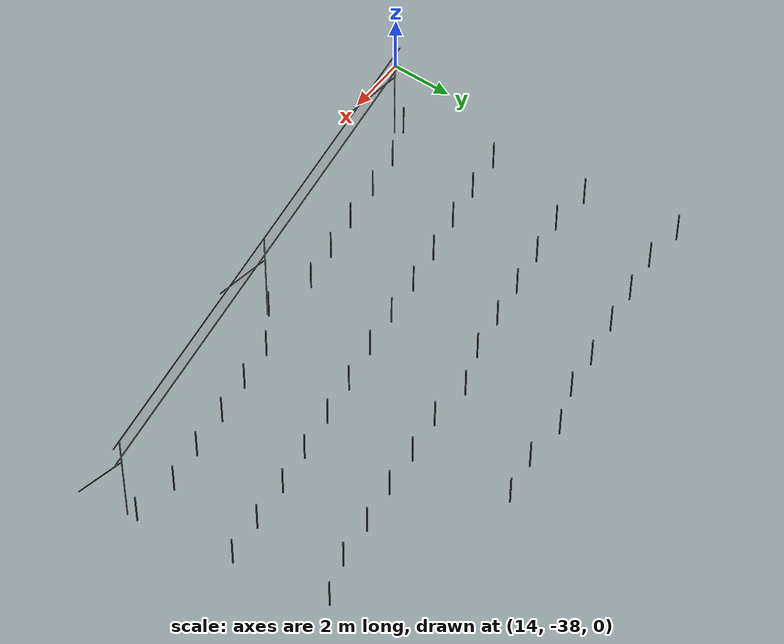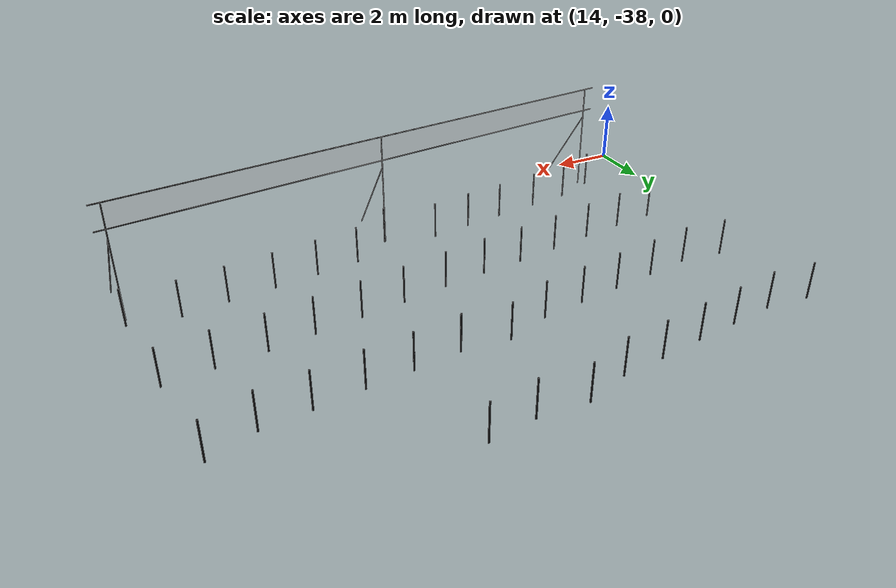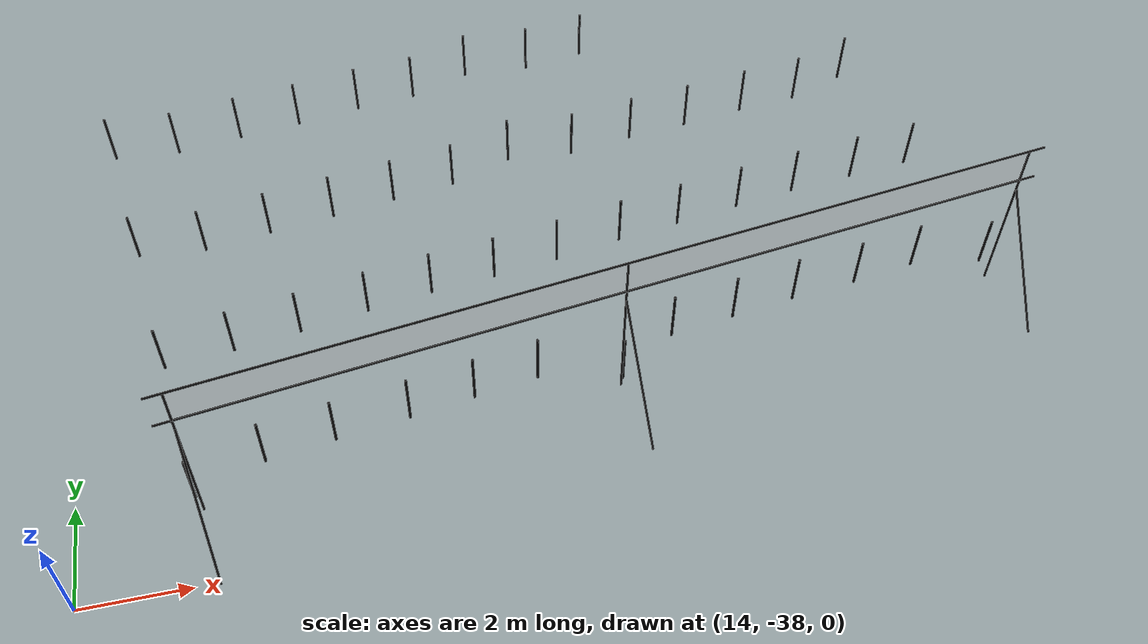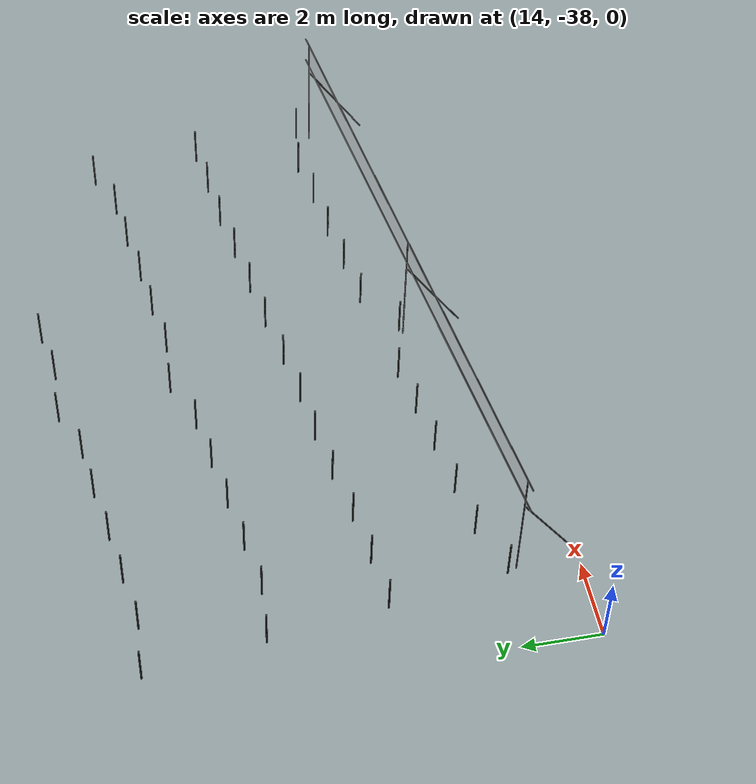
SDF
<sdf version="1.7">
 <world name="default">
  <model name="pole_5">
   <link name="link">
    <collision name="collision">
     <geometry><cylinder><length>1.15</length><radius>0.025</radius></cylinder></geometry>
    </collision>
    <visual name="visual">
     <geometry><cylinder><length>1.15</length><radius>0.025</radius></cylinder></geometry>
     <material>
      <script><uri>file://media/materials/scripts/gazebo.material</uri><name>Gazebo/Chrome</name></script>
      <emissive>0.1 0.1 0.1 1</emissive>
      <shader type="vertex"><normal_map>__default__</normal_map></shader>
      <specular>0.01 0.01 0.01 1</specular>
      <ambient>0.5 0.5 0.5 1</ambient>
      <diffuse>0.05 0.05 0.05 1</diffuse>
     </material>
    </visual>
   </link>
   <static>1</static>
   <pose>22.65 -26.08 0.575 0.0 0.0 0.0</pose>
  </model>
  <model name="pole_6">
   <link name="link">
    <collision name="collision">
     <geometry><cylinder><length>1.15</length><radius>0.025</radius></cylinder></geometry>
    </collision>
    <visual name="visual">
     <geometry><cylinder><length>1.15</length><radius>0.025</radius></cylinder></geometry>
     <material>
      <script><uri>file://media/materials/scripts/gazebo.material</uri><name>Gazebo/Chrome</name></script>
      <emissive>0.1 0.1 0.1 1</emissive>
      <shader type="vertex"><normal_map>__default__</normal_map></shader>
      <specular>0.01 0.01 0.01 1</specular>
      <ambient>0.5 0.5 0.5 1</ambient>
      <diffuse>0.05 0.05 0.05 1</diffuse>
     </material>
    </visual>
   </link>
   <static>1</static>
   <pose>23.1 -29.01 0.575 0.0 0.0 0.0</pose>
  </model>
  <model name="pole_7">
   <link name="link">
    <collision name="collision">
     <geometry><cylinder><length>1.15</length><radius>0.025</radius></cylinder></geometry>
    </collision>
    <visual name="visual">
     <geometry><cylinder><length>1.15</length><radius>0.025</radius></cylinder></geometry>
     <material>
      <script><uri>file://media/materials/scripts/gazebo.material</uri><name>Gazebo/Chrome</name></script>
      <emissive>0.1 0.1 0.1 1</emissive>
      <shader type="vertex"><normal_map>__default__</normal_map></shader>
      <specular>0.01 0.01 0.01 1</specular>
      <ambient>0.5 0.5 0.5 1</ambient>
      <diffuse>0.05 0.05 0.05 1</diffuse>
     </material>
    </visual>
   </link>
   <static>1</static>
   <pose>23.53 -32.05 0.575 0.0 0.0 0.0</pose>
  </model>
  <model name="pole_8">
   <link name="link">
    <collision name="collision">
     <geometry><cylinder><length>1.15</length><radius>0.025</radius></cylinder></geometry>
    </collision>
    <visual name="visual">
     <geometry><cylinder><length>1.15</length><radius>0.025</radius></cylinder></geometry>
     <material>
      <script><uri>file://media/materials/scripts/gazebo.material</uri><name>Gazebo/Chrome</name></script>
      <emissive>0.1 0.1 0.1 1</emissive>
      <shader type="vertex"><normal_map>__default__</normal_map></shader>
      <specular>0.01 0.01 0.01 1</specular>
      <ambient>0.5 0.5 0.5 1</ambient>
      <diffuse>0.05 0.05 0.05 1</diffuse>
     </material>
    </visual>
   </link>
   <static>1</static>
   <pose>24.12 -35.26 0.575 0.0 0.0 0.0</pose>
  </model>
  <model name="pole_104">
   <link name="link">
    <collision name="collision">
     <geometry><cylinder><length>1.15</length><radius>0.025</radius></cylinder></geometry>
    </collision>
    <visual name="visual">
     <geometry><cylinder><length>1.15</length><radius>0.025</radius></cylinder></geometry>
     <material>
      <script><uri>file://media/materials/scripts/gazebo.material</uri><name>Gazebo/Chrome</name></script>
      <emissive>0.1 0.1 0.1 1</emissive>
      <shader type="vertex"><normal_map>__default__</normal_map></shader>
      <specular>0.01 0.01 0.01 1</specular>
      <ambient>0.5 0.5 0.5 1</ambient>
      <diffuse>0.05 0.05 0.05 1</diffuse>
     </material>
    </visual>
   </link>
   <static>1</static>
   <pose>25.39 -25.9 0.575 0.0 0.0 0.0</pose>
  </model>
  <model name="pole_105">
   <link name="link">
    <collision name="collision">
     <geometry><cylinder><length>1.15</length><radius>0.025</radius></cylinder></geometry>
    </collision>
    <visual name="visual">
     <geometry><cylinder><length>1.15</length><radius>0.025</radius></cylinder></geometry>
     <material>
      <script><uri>file://media/materials/scripts/gazebo.material</uri><name>Gazebo/Chrome</name></script>
      <emissive>0.1 0.1 0.1 1</emissive>
      <shader type="vertex"><normal_map>__default__</normal_map></shader>
      <specular>0.01 0.01 0.01 1</specular>
      <ambient>0.5 0.5 0.5 1</ambient>
      <diffuse>0.05 0.05 0.05 1</diffuse>
     </material>
    </visual>
   </link>
   <static>1</static>
   <pose>25.85 -28.9 0.575 0.0 0.0 0.0</pose>
  </model>
  <model name="pole_106">
   <link name="link">
    <collision name="collision">
     <geometry><cylinder><length>1.15</length><radius>0.025</radius></cylinder></geometry>
    </collision>
    <visual name="visual">
     <geometry><cylinder><length>1.15</length><radius>0.025</radius></cylinder></geometry>
     <material>
      <script><uri>file://media/materials/scripts/gazebo.material</uri><name>Gazebo/Chrome</name></script>
      <emissive>0.1 0.1 0.1 1</emissive>
      <shader type="vertex"><normal_map>__default__</normal_map></shader>
      <specular>0.01 0.01 0.01 1</specular>
      <ambient>0.5 0.5 0.5 1</ambient>
      <diffuse>0.05 0.05 0.05 1</diffuse>
     </material>
    </visual>
   </link>
   <static>1</static>
   <pose>26.2 -31.6 0.575 0.0 0.0 0.0</pose>
  </model>
  <model name="pole_107">
   <link name="link">
    <collision name="collision">
     <geometry><cylinder><length>1.15</length><radius>0.025</radius></cylinder></geometry>
    </collision>
    <visual name="visual">
     <geometry><cylinder><length>1.15</length><radius>0.025</radius></cylinder></geometry>
     <material>
      <script><uri>file://media/materials/scripts/gazebo.material</uri><name>Gazebo/Chrome</name></script>
      <emissive>0.1 0.1 0.1 1</emissive>
      <shader type="vertex"><normal_map>__default__</normal_map></shader>
      <specular>0.01 0.01 0.01 1</specular>
      <ambient>0.5 0.5 0.5 1</ambient>
      <diffuse>0.05 0.05 0.05 1</diffuse>
     </material>
    </visual>
   </link>
   <static>1</static>
   <pose>26.6 -34.25 0.575 0.0 0.0 0.0</pose>
  </model>
  <model name="pole_113">
   <link name="link">
    <collision name="collision">
     <geometry><cylinder><length>1.15</length><radius>0.025</radius></cylinder></geometry>
    </collision>
    <visual name="visual">
     <geometry><cylinder><length>1.15</length><radius>0.025</radius></cylinder></geometry>
     <material>
      <script><uri>file://media/materials/scripts/gazebo.material</uri><name>Gazebo/Chrome</name></script>
      <emissive>0.1 0.1 0.1 1</emissive>
      <shader type="vertex"><normal_map>__default__</normal_map></shader>
      <specular>0.01 0.01 0.01 1</specular>
      <ambient>0.5 0.5 0.5 1</ambient>
      <diffuse>0.05 0.05 0.05 1</diffuse>
     </material>
    </visual>
   </link>
   <static>1</static>
   <pose>24.07 -26.13 0.575 0.0 0.0 0.0</pose>
  </model>
  <model name="pole_114">
   <link name="link">
    <collision name="collision">
     <geometry><cylinder><length>1.15</length><radius>0.025</radius></cylinder></geometry>
    </collision>
    <visual name="visual">
     <geometry><cylinder><length>1.15</length><radius>0.025</radius></cylinder></geometry>
     <material>
      <script><uri>file://media/materials/scripts/gazebo.material</uri><name>Gazebo/Chrome</name></script>
      <emissive>0.1 0.1 0.1 1</emissive>
      <shader type="vertex"><normal_map>__default__</normal_map></shader>
      <specular>0.01 0.01 0.01 1</specular>
      <ambient>0.5 0.5 0.5 1</ambient>
      <diffuse>0.05 0.05 0.05 1</diffuse>
     </material>
    </visual>
   </link>
   <static>1</static>
   <pose>24.49 -29.1 0.575 0.0 0.0 0.0</pose>
  </model>
  <model name="pole_115">
   <link name="link">
    <collision name="collision">
     <geometry><cylinder><length>1.15</length><radius>0.025</radius></cylinder></geometry>
    </collision>
    <visual name="visual">
     <geometry><cylinder><length>1.15</length><radius>0.025</radius></cylinder></geometry>
     <material>
      <script><uri>file://media/materials/scripts/gazebo.material</uri><name>Gazebo/Chrome</name></script>
      <emissive>0.1 0.1 0.1 1</emissive>
      <shader type="vertex"><normal_map>__default__</normal_map></shader>
      <specular>0.01 0.01 0.01 1</specular>
      <ambient>0.5 0.5 0.5 1</ambient>
      <diffuse>0.05 0.05 0.05 1</diffuse>
     </material>
    </visual>
   </link>
   <static>1</static>
   <pose>24.9 -31.8 0.575 0.0 0.0 0.0</pose>
  </model>
  <model name="pole_116">
   <link name="link">
    <collision name="collision">
     <geometry><cylinder><length>1.15</length><radius>0.025</radius></cylinder></geometry>
    </collision>
    <visual name="visual">
     <geometry><cylinder><length>1.15</length><radius>0.025</radius></cylinder></geometry>
     <material>
      <script><uri>file://media/materials/scripts/gazebo.material</uri><name>Gazebo/Chrome</name></script>
      <emissive>0.1 0.1 0.1 1</emissive>
      <shader type="vertex"><normal_map>__default__</normal_map></shader>
      <specular>0.01 0.01 0.01 1</specular>
      <ambient>0.5 0.5 0.5 1</ambient>
      <diffuse>0.05 0.05 0.05 1</diffuse>
     </material>
    </visual>
   </link>
   <static>1</static>
   <pose>25.3 -34.45 0.575 0.0 0.0 0.0</pose>
  </model>
  <model name="pole_122">
   <link name="link">
    <collision name="collision">
     <geometry><cylinder><length>1.15</length><radius>0.025</radius></cylinder></geometry>
    </collision>
    <visual name="visual">
     <geometry><cylinder><length>1.15</length><radius>0.025</radius></cylinder></geometry>
     <material>
      <script><uri>file://media/materials/scripts/gazebo.material</uri><name>Gazebo/Chrome</name></script>
      <emissive>0.1 0.1 0.1 1</emissive>
      <shader type="vertex"><normal_map>__default__</normal_map></shader>
      <specular>0.01 0.01 0.01 1</specular>
      <ambient>0.5 0.5 0.5 1</ambient>
      <diffuse>0.05 0.05 0.05 1</diffuse>
     </material>
    </visual>
   </link>
   <static>1</static>
   <pose>22.65 -26.08 0.575 0.0 0.0 0.0</pose>
  </model>
  <model name="pole_123">
   <link name="link">
    <collision name="collision">
     <geometry><cylinder><length>1.15</length><radius>0.025</radius></cylinder></geometry>
    </collision>
    <visual name="visual">
     <geometry><cylinder><length>1.15</length><radius>0.025</radius></cylinder></geometry>
     <material>
      <script><uri>file://media/materials/scripts/gazebo.material</uri><name>Gazebo/Chrome</name></script>
      <emissive>0.1 0.1 0.1 1</emissive>
      <shader type="vertex"><normal_map>__default__</normal_map></shader>
      <specular>0.01 0.01 0.01 1</specular>
      <ambient>0.5 0.5 0.5 1</ambient>
      <diffuse>0.05 0.05 0.05 1</diffuse>
     </material>
    </visual>
   </link>
   <static>1</static>
   <pose>23.1 -29.01 0.575 0.0 0.0 0.0</pose>
  </model>
  <model name="pole_124">
   <link name="link">
    <collision name="collision">
     <geometry><cylinder><length>1.15</length><radius>0.025</radius></cylinder></geometry>
    </collision>
    <visual name="visual">
     <geometry><cylinder><length>1.15</length><radius>0.025</radius></cylinder></geometry>
     <material>
      <script><uri>file://media/materials/scripts/gazebo.material</uri><name>Gazebo/Chrome</name></script>
      <emissive>0.1 0.1 0.1 1</emissive>
      <shader type="vertex"><normal_map>__default__</normal_map></shader>
      <specular>0.01 0.01 0.01 1</specular>
      <ambient>0.5 0.5 0.5 1</ambient>
      <diffuse>0.05 0.05 0.05 1</diffuse>
     </material>
    </visual>
   </link>
   <static>1</static>
   <pose>23.53 -32.05 0.575 0.0 0.0 0.0</pose>
  </model>
  <model name="pole_125">
   <link name="link">
    <collision name="collision">
     <geometry><cylinder><length>1.15</length><radius>0.025</radius></cylinder></geometry>
    </collision>
    <visual name="visual">
     <geometry><cylinder><length>1.15</length><radius>0.025</radius></cylinder></geometry>
     <material>
      <script><uri>file://media/materials/scripts/gazebo.material</uri><name>Gazebo/Chrome</name></script>
      <emissive>0.1 0.1 0.1 1</emissive>
      <shader type="vertex"><normal_map>__default__</normal_map></shader>
      <specular>0.01 0.01 0.01 1</specular>
      <ambient>0.5 0.5 0.5 1</ambient>
      <diffuse>0.05 0.05 0.05 1</diffuse>
     </material>
    </visual>
   </link>
   <static>1</static>
   <pose>24.12 -35.26 0.575 0.0 0.0 0.0</pose>
  </model>
  <model name="frontage_clone">
   <link name="link_1">
    <pose>6.68 -7.94 1.7 0.0 0.0 0.0</pose>
    <collision name="collision">
     <geometry><cylinder><length>3.5</length><radius>0.02</radius></cylinder></geometry>
    </collision>
    <visual name="visual">
     <geometry><cylinder><length>3.5</length><radius>0.02</radius></cylinder></geometry>
     <material>
      <script><uri>file://media/materials/scripts/gazebo.material</uri><name>Gazebo/Chrome</name></script>
      <emissive>0.1 0.1 0.1 1</emissive>
      <shader type="vertex"><normal_map>__default__</normal_map></shader>
      <specular>0.01 0.01 0.01 1</specular>
      <ambient>0.5 0.5 0.5 1</ambient>
      <diffuse>0.05 0.05 0.05 1</diffuse>
     </material>
    </visual>
   </link>
   <link name="link_2">
    <pose>6.68 0 1.7 0.0 0.0 0.0</pose>
    <collision name="collision">
     <geometry><cylinder><length>3.5</length><radius>0.02</radius></cylinder></geometry>
    </collision>
    <visual name="visual">
     <geometry><cylinder><length>3.5</length><radius>0.02</radius></cylinder></geometry>
     <material>
      <script><uri>file://media/materials/scripts/gazebo.material</uri><name>Gazebo/Chrome</name></script>
      <emissive>0.1 0.1 0.1 1</emissive>
      <shader type="vertex"><normal_map>__default__</normal_map></shader>
      <specular>0.01 0.01 0.01 1</specular>
      <ambient>0.5 0.5 0.5 1</ambient>
      <diffuse>0.05 0.05 0.05 1</diffuse>
     </material>
    </visual>
   </link>
   <link name="link_3">
    <pose>6.68 7.93 1.7 0.0 0.0 0.0</pose>
    <collision name="collision">
     <geometry><cylinder><length>3.5</length><radius>0.02</radius></cylinder></geometry>
    </collision>
    <visual name="visual">
     <geometry><cylinder><length>3.5</length><radius>0.02</radius></cylinder></geometry>
     <material>
      <script><uri>file://media/materials/scripts/gazebo.material</uri><name>Gazebo/Chrome</name></script>
      <emissive>0.1 0.1 0.1 1</emissive>
      <shader type="vertex"><normal_map>__default__</normal_map></shader>
      <specular>0.01 0.01 0.01 1</specular>
      <ambient>0.5 0.5 0.5 1</ambient>
      <diffuse>0.05 0.05 0.05 1</diffuse>
     </material>
    </visual>
   </link>
   <link name="link_4">
    <pose>6.68 0 2.7 1.5707 -0 0</pose>
    <collision name="collision">
     <geometry><cylinder><length>16.5</length><radius>0.02</radius></cylinder></geometry>
    </collision>
    <visual name="visual">
     <geometry><cylinder><length>16.5</length><radius>0.02</radius></cylinder></geometry>
     <material>
      <script><uri>file://media/materials/scripts/gazebo.material</uri><name>Gazebo/Chrome</name></script>
      <emissive>0.1 0.1 0.1 1</emissive>
      <shader type="vertex"><normal_map>__default__</normal_map></shader>
      <specular>0.01 0.01 0.01 1</specular>
      <ambient>0.5 0.5 0.5 1</ambient>
      <diffuse>0.05 0.05 0.05 1</diffuse>
     </material>
    </visual>
   </link>
   <link name="link_5">
    <pose>6.68 0 3.45 1.5707 -0 0</pose>
    <collision name="collision">
     <geometry><cylinder><length>16.5</length><radius>0.02</radius></cylinder></geometry>
    </collision>
    <visual name="visual">
     <geometry><cylinder><length>16.5</length><radius>0.02</radius></cylinder></geometry>
     <material>
      <script><uri>file://media/materials/scripts/gazebo.material</uri><name>Gazebo/Chrome</name></script>
      <emissive>0.1 0.1 0.1 1</emissive>
      <shader type="vertex"><normal_map>__default__</normal_map></shader>
      <specular>0.01 0.01 0.01 1</specular>
      <ambient>0.5 0.5 0.5 1</ambient>
      <diffuse>0.05 0.05 0.05 1</diffuse>
     </material>
    </visual>
   </link>
   <link name="link_6">
    <pose>5.89 -7.94 1.225 0 0.565 0</pose>
    <collision name="collision">
     <geometry><cylinder><length>2.93</length><radius>0.02</radius></cylinder></geometry>
    </collision>
    <visual name="visual">
     <geometry><cylinder><length>2.93</length><radius>0.02</radius></cylinder></geometry>
     <material>
      <script><uri>file://media/materials/scripts/gazebo.material</uri><name>Gazebo/Chrome</name></script>
      <emissive>0.1 0.1 0.1 1</emissive>
      <shader type="vertex"><normal_map>__default__</normal_map></shader>
      <specular>0.01 0.01 0.01 1</specular>
      <ambient>0.5 0.5 0.5 1</ambient>
      <diffuse>0.05 0.05 0.05 1</diffuse>
     </material>
    </visual>
   </link>
   <link name="link_7">
    <pose>5.89 0 1.225 0 0.565 0</pose>
    <collision name="collision">
     <geometry><cylinder><length>2.93</length><radius>0.02</radius></cylinder></geometry>
    </collision>
    <visual name="visual">
     <geometry><cylinder><length>2.93</length><radius>0.02</radius></cylinder></geometry>
     <material>
      <script><uri>file://media/materials/scripts/gazebo.material</uri><name>Gazebo/Chrome</name></script>
      <emissive>0.1 0.1 0.1 1</emissive>
      <shader type="vertex"><normal_map>__default__</normal_map></shader>
      <specular>0.01 0.01 0.01 1</specular>
      <ambient>0.5 0.5 0.5 1</ambient>
      <diffuse>0.05 0.05 0.05 1</diffuse>
     </material>
    </visual>
   </link>
   <link name="link_8">
    <pose>5.89 7.93 1.225 0 0.565 0</pose>
    <collision name="collision">
     <geometry><cylinder><length>2.93</length><radius>0.02</radius></cylinder></geometry>
    </collision>
    <visual name="visual">
     <geometry><cylinder><length>2.93</length><radius>0.02</radius></cylinder></geometry>
     <material>
      <script><uri>file://media/materials/scripts/gazebo.material</uri><name>Gazebo/Chrome</name></script>
      <emissive>0.1 0.1 0.1 1</emissive>
      <shader type="vertex"><normal_map>__default__</normal_map></shader>
      <specular>0.01 0.01 0.01 1</specular>
      <ambient>0.5 0.5 0.5 1</ambient>
      <diffuse>0.05 0.05 0.05 1</diffuse>
     </material>
    </visual>
   </link>
   <link name="link_9">
    <pose>6.68 0 3.075 0.0 0.0 0.0</pose>
    <collision name="collision"><geometry><box><size>0.002 15.87 0.75</size></box></geometry></collision>
    <visual name="visual">
     <geometry><box><size>0.002 15.87 0.75</size></box></geometry>
     <material>
      <emissive>1 1 1 1</emissive>
      <shader type="vertex"><normal_map>__default__</normal_map></shader>
      <specular>1 1 1 1</specular>
      <lighting>1</lighting>
      <ambient>1 1 1 1</ambient>
      <diffuse>1 1 1 1</diffuse>
     </material>
     <transparency>0.65</transparency>
    </visual>
   </link>
   <static>1</static>
   <pose>24.9847 -41.9744 0 0 -0 1.70941</pose>
  </model>
  <model name="pole_14">
   <link name="link">
    <collision name="collision">
     <geometry><cylinder><length>1.15</length><radius>0.025</radius></cylinder></geometry>
    </collision>
    <visual name="visual">
     <geometry><cylinder><length>1.15</length><radius>0.025</radius></cylinder></geometry>
     <material>
      <script><uri>file://media/materials/scripts/gazebo.material</uri><name>Gazebo/Chrome</name></script>
      <emissive>0.1 0.1 0.1 1</emissive>
      <shader type="vertex"><normal_map>__default__</normal_map></shader>
      <specular>0.01 0.01 0.01 1</specular>
      <ambient>0.5 0.5 0.5 1</ambient>
      <diffuse>0.05 0.05 0.05 1</diffuse>
     </material>
    </visual>
   </link>
   <static>1</static>
   <pose>21.37 -26.55 0.575 0.0 0.0 0.0</pose>
  </model>
  <model name="pole_15">
   <link name="link">
    <collision name="collision">
     <geometry><cylinder><length>1.15</length><radius>0.025</radius></cylinder></geometry>
    </collision>
    <visual name="visual">
     <geometry><cylinder><length>1.15</length><radius>0.025</radius></cylinder></geometry>
     <material>
      <script><uri>file://media/materials/scripts/gazebo.material</uri><name>Gazebo/Chrome</name></script>
      <emissive>0.1 0.1 0.1 1</emissive>
      <shader type="vertex"><normal_map>__default__</normal_map></shader>
      <specular>0.01 0.01 0.01 1</specular>
      <ambient>0.5 0.5 0.5 1</ambient>
      <diffuse>0.05 0.05 0.05 1</diffuse>
     </material>
    </visual>
   </link>
   <static>1</static>
   <pose>21.8 -29.5 0.575 0.0 0.0 0.0</pose>
  </model>
  <model name="pole_16">
   <link name="link">
    <collision name="collision">
     <geometry><cylinder><length>1.15</length><radius>0.025</radius></cylinder></geometry>
    </collision>
    <visual name="visual">
     <geometry><cylinder><length>1.15</length><radius>0.025</radius></cylinder></geometry>
     <material>
      <script><uri>file://media/materials/scripts/gazebo.material</uri><name>Gazebo/Chrome</name></script>
      <emissive>0.1 0.1 0.1 1</emissive>
      <shader type="vertex"><normal_map>__default__</normal_map></shader>
      <specular>0.01 0.01 0.01 1</specular>
      <ambient>0.5 0.5 0.5 1</ambient>
      <diffuse>0.05 0.05 0.05 1</diffuse>
     </material>
    </visual>
   </link>
   <static>1</static>
   <pose>22.2 -32.25 0.575 0.0 0.0 0.0</pose>
  </model>
  <model name="pole_17">
   <link name="link">
    <collision name="collision">
     <geometry><cylinder><length>1.15</length><radius>0.025</radius></cylinder></geometry>
    </collision>
    <visual name="visual">
     <geometry><cylinder><length>1.15</length><radius>0.025</radius></cylinder></geometry>
     <material>
      <script><uri>file://media/materials/scripts/gazebo.material</uri><name>Gazebo/Chrome</name></script>
      <emissive>0.1 0.1 0.1 1</emissive>
      <shader type="vertex"><normal_map>__default__</normal_map></shader>
      <specular>0.01 0.01 0.01 1</specular>
      <ambient>0.5 0.5 0.5 1</ambient>
      <diffuse>0.05 0.05 0.05 1</diffuse>
     </material>
    </visual>
   </link>
   <static>1</static>
   <pose>22.55 -34.9 0.575 0.0 0.0 0.0</pose>
  </model>
  <model name="pole_23">
   <link name="link">
    <collision name="collision">
     <geometry><cylinder><length>1.15</length><radius>0.025</radius></cylinder></geometry>
    </collision>
    <visual name="visual">
     <geometry><cylinder><length>1.15</length><radius>0.025</radius></cylinder></geometry>
     <material>
      <script><uri>file://media/materials/scripts/gazebo.material</uri><name>Gazebo/Chrome</name></script>
      <emissive>0.1 0.1 0.1 1</emissive>
      <shader type="vertex"><normal_map>__default__</normal_map></shader>
      <specular>0.01 0.01 0.01 1</specular>
      <ambient>0.5 0.5 0.5 1</ambient>
      <diffuse>0.05 0.05 0.05 1</diffuse>
     </material>
    </visual>
   </link>
   <static>1</static>
   <pose>20.1 -26.7 0.575 0.0 0.0 0.0</pose>
  </model>
  <model name="pole_24">
   <link name="link">
    <collision name="collision">
     <geometry><cylinder><length>1.15</length><radius>0.025</radius></cylinder></geometry>
    </collision>
    <visual name="visual">
     <geometry><cylinder><length>1.15</length><radius>0.025</radius></cylinder></geometry>
     <material>
      <script><uri>file://media/materials/scripts/gazebo.material</uri><name>Gazebo/Chrome</name></script>
      <emissive>0.1 0.1 0.1 1</emissive>
      <shader type="vertex"><normal_map>__default__</normal_map></shader>
      <specular>0.01 0.01 0.01 1</specular>
      <ambient>0.5 0.5 0.5 1</ambient>
      <diffuse>0.05 0.05 0.05 1</diffuse>
     </material>
    </visual>
   </link>
   <static>1</static>
   <pose>20.5 -29.7 0.575 0.0 0.0 0.0</pose>
  </model>
  <model name="pole_25">
   <link name="link">
    <collision name="collision">
     <geometry><cylinder><length>1.15</length><radius>0.025</radius></cylinder></geometry>
    </collision>
    <visual name="visual">
     <geometry><cylinder><length>1.15</length><radius>0.025</radius></cylinder></geometry>
     <material>
      <script><uri>file://media/materials/scripts/gazebo.material</uri><name>Gazebo/Chrome</name></script>
      <emissive>0.1 0.1 0.1 1</emissive>
      <shader type="vertex"><normal_map>__default__</normal_map></shader>
      <specular>0.01 0.01 0.01 1</specular>
      <ambient>0.5 0.5 0.5 1</ambient>
      <diffuse>0.05 0.05 0.05 1</diffuse>
     </material>
    </visual>
   </link>
   <static>1</static>
   <pose>20.9 -32.4 0.575 0.0 0.0 0.0</pose>
  </model>
  <model name="pole_26">
   <link name="link">
    <collision name="collision">
     <geometry><cylinder><length>1.15</length><radius>0.025</radius></cylinder></geometry>
    </collision>
    <visual name="visual">
     <geometry><cylinder><length>1.15</length><radius>0.025</radius></cylinder></geometry>
     <material>
      <script><uri>file://media/materials/scripts/gazebo.material</uri><name>Gazebo/Chrome</name></script>
      <emissive>0.1 0.1 0.1 1</emissive>
      <shader type="vertex"><normal_map>__default__</normal_map></shader>
      <specular>0.01 0.01 0.01 1</specular>
      <ambient>0.5 0.5 0.5 1</ambient>
      <diffuse>0.05 0.05 0.05 1</diffuse>
     </material>
    </visual>
   </link>
   <static>1</static>
   <pose>21.3 -35.1 0.575 0.0 0.0 0.0</pose>
  </model>
  <model name="pole_32">
   <link name="link">
    <collision name="collision">
     <geometry><cylinder><length>1.15</length><radius>0.025</radius></cylinder></geometry>
    </collision>
    <visual name="visual">
     <geometry><cylinder><length>1.15</length><radius>0.025</radius></cylinder></geometry>
     <material>
      <script><uri>file://media/materials/scripts/gazebo.material</uri><name>Gazebo/Chrome</name></script>
      <emissive>0.1 0.1 0.1 1</emissive>
      <shader type="vertex"><normal_map>__default__</normal_map></shader>
      <specular>0.01 0.01 0.01 1</specular>
      <ambient>0.5 0.5 0.5 1</ambient>
      <diffuse>0.05 0.05 0.05 1</diffuse>
     </material>
    </visual>
   </link>
   <static>1</static>
   <pose>18.75 -26.92 0.575 0.0 0.0 0.0</pose>
  </model>
  <model name="pole_33">
   <link name="link">
    <collision name="collision">
     <geometry><cylinder><length>1.15</length><radius>0.025</radius></cylinder></geometry>
    </collision>
    <visual name="visual">
     <geometry><cylinder><length>1.15</length><radius>0.025</radius></cylinder></geometry>
     <material>
      <script><uri>file://media/materials/scripts/gazebo.material</uri><name>Gazebo/Chrome</name></script>
      <emissive>0.1 0.1 0.1 1</emissive>
      <shader type="vertex"><normal_map>__default__</normal_map></shader>
      <specular>0.01 0.01 0.01 1</specular>
      <ambient>0.5 0.5 0.5 1</ambient>
      <diffuse>0.05 0.05 0.05 1</diffuse>
     </material>
    </visual>
   </link>
   <static>1</static>
   <pose>19.2 -29.9 0.575 0.0 0.0 0.0</pose>
  </model>
  <model name="pole_34">
   <link name="link">
    <collision name="collision">
     <geometry><cylinder><length>1.15</length><radius>0.025</radius></cylinder></geometry>
    </collision>
    <visual name="visual">
     <geometry><cylinder><length>1.15</length><radius>0.025</radius></cylinder></geometry>
     <material>
      <script><uri>file://media/materials/scripts/gazebo.material</uri><name>Gazebo/Chrome</name></script>
      <emissive>0.1 0.1 0.1 1</emissive>
      <shader type="vertex"><normal_map>__default__</normal_map></shader>
      <specular>0.01 0.01 0.01 1</specular>
      <ambient>0.5 0.5 0.5 1</ambient>
      <diffuse>0.05 0.05 0.05 1</diffuse>
     </material>
    </visual>
   </link>
   <static>1</static>
   <pose>19.6 -32.6 0.575 0.0 0.0 0.0</pose>
  </model>
  <model name="pole_35">
   <link name="link">
    <collision name="collision">
     <geometry><cylinder><length>1.15</length><radius>0.025</radius></cylinder></geometry>
    </collision>
    <visual name="visual">
     <geometry><cylinder><length>1.15</length><radius>0.025</radius></cylinder></geometry>
     <material>
      <script><uri>file://media/materials/scripts/gazebo.material</uri><name>Gazebo/Chrome</name></script>
      <emissive>0.1 0.1 0.1 1</emissive>
      <shader type="vertex"><normal_map>__default__</normal_map></shader>
      <specular>0.01 0.01 0.01 1</specular>
      <ambient>0.5 0.5 0.5 1</ambient>
      <diffuse>0.05 0.05 0.05 1</diffuse>
     </material>
    </visual>
   </link>
   <static>1</static>
   <pose>20.05 -35.3 0.575 0.0 0.0 0.0</pose>
  </model>
  <model name="pole_41">
   <link name="link">
    <collision name="collision">
     <geometry><cylinder><length>1.15</length><radius>0.025</radius></cylinder></geometry>
    </collision>
    <visual name="visual">
     <geometry><cylinder><length>1.15</length><radius>0.025</radius></cylinder></geometry>
     <material>
      <script><uri>file://media/materials/scripts/gazebo.material</uri><name>Gazebo/Chrome</name></script>
      <emissive>0.1 0.1 0.1 1</emissive>
      <shader type="vertex"><normal_map>__default__</normal_map></shader>
      <specular>0.01 0.01 0.01 1</specular>
      <ambient>0.5 0.5 0.5 1</ambient>
      <diffuse>0.05 0.05 0.05 1</diffuse>
     </material>
    </visual>
   </link>
   <static>1</static>
   <pose>17.45 -27.1 0.575 0.0 0.0 0.0</pose>
  </model>
  <model name="pole_42">
   <link name="link">
    <collision name="collision">
     <geometry><cylinder><length>1.15</length><radius>0.025</radius></cylinder></geometry>
    </collision>
    <visual name="visual">
     <geometry><cylinder><length>1.15</length><radius>0.025</radius></cylinder></geometry>
     <material>
      <script><uri>file://media/materials/scripts/gazebo.material</uri><name>Gazebo/Chrome</name></script>
      <emissive>0.1 0.1 0.1 1</emissive>
      <shader type="vertex"><normal_map>__default__</normal_map></shader>
      <specular>0.01 0.01 0.01 1</specular>
      <ambient>0.5 0.5 0.5 1</ambient>
      <diffuse>0.05 0.05 0.05 1</diffuse>
     </material>
    </visual>
   </link>
   <static>1</static>
   <pose>17.87 -30.1 0.575 0.0 0.0 0.0</pose>
  </model>
  <model name="pole_43">
   <link name="link">
    <collision name="collision">
     <geometry><cylinder><length>1.15</length><radius>0.025</radius></cylinder></geometry>
    </collision>
    <visual name="visual">
     <geometry><cylinder><length>1.15</length><radius>0.025</radius></cylinder></geometry>
     <material>
      <script><uri>file://media/materials/scripts/gazebo.material</uri><name>Gazebo/Chrome</name></script>
      <emissive>0.1 0.1 0.1 1</emissive>
      <shader type="vertex"><normal_map>__default__</normal_map></shader>
      <specular>0.01 0.01 0.01 1</specular>
      <ambient>0.5 0.5 0.5 1</ambient>
      <diffuse>0.05 0.05 0.05 1</diffuse>
     </material>
    </visual>
   </link>
   <static>1</static>
   <pose>18.25 -32.85 0.575 0.0 0.0 0.0</pose>
  </model>
  <model name="pole_44">
   <link name="link">
    <collision name="collision">
     <geometry><cylinder><length>1.15</length><radius>0.025</radius></cylinder></geometry>
    </collision>
    <visual name="visual">
     <geometry><cylinder><length>1.15</length><radius>0.025</radius></cylinder></geometry>
     <material>
      <script><uri>file://media/materials/scripts/gazebo.material</uri><name>Gazebo/Chrome</name></script>
      <emissive>0.1 0.1 0.1 1</emissive>
      <shader type="vertex"><normal_map>__default__</normal_map></shader>
      <specular>0.01 0.01 0.01 1</specular>
      <ambient>0.5 0.5 0.5 1</ambient>
      <diffuse>0.05 0.05 0.05 1</diffuse>
     </material>
    </visual>
   </link>
   <static>1</static>
   <pose>18.65 -35.5 0.575 0.0 0.0 0.0</pose>
  </model>
  <model name="pole_50">
   <link name="link">
    <collision name="collision">
     <geometry><cylinder><length>1.15</length><radius>0.025</radius></cylinder></geometry>
    </collision>
    <visual name="visual">
     <geometry><cylinder><length>1.15</length><radius>0.025</radius></cylinder></geometry>
     <material>
      <script><uri>file://media/materials/scripts/gazebo.material</uri><name>Gazebo/Chrome</name></script>
      <emissive>0.1 0.1 0.1 1</emissive>
      <shader type="vertex"><normal_map>__default__</normal_map></shader>
      <specular>0.01 0.01 0.01 1</specular>
      <ambient>0.5 0.5 0.5 1</ambient>
      <diffuse>0.05 0.05 0.05 1</diffuse>
     </material>
    </visual>
   </link>
   <static>1</static>
   <pose>16.1 -27.3 0.575 0.0 0.0 0.0</pose>
  </model>
  <model name="pole_51">
   <link name="link">
    <collision name="collision">
     <geometry><cylinder><length>1.15</length><radius>0.025</radius></cylinder></geometry>
    </collision>
    <visual name="visual">
     <geometry><cylinder><length>1.15</length><radius>0.025</radius></cylinder></geometry>
     <material>
      <script><uri>file://media/materials/scripts/gazebo.material</uri><name>Gazebo/Chrome</name></script>
      <emissive>0.1 0.1 0.1 1</emissive>
      <shader type="vertex"><normal_map>__default__</normal_map></shader>
      <specular>0.01 0.01 0.01 1</specular>
      <ambient>0.5 0.5 0.5 1</ambient>
      <diffuse>0.05 0.05 0.05 1</diffuse>
     </material>
    </visual>
   </link>
   <static>1</static>
   <pose>16.54 -30.31 0.575 0.0 0.0 0.0</pose>
  </model>
  <model name="pole_52">
   <link name="link">
    <collision name="collision">
     <geometry><cylinder><length>1.15</length><radius>0.025</radius></cylinder></geometry>
    </collision>
    <visual name="visual">
     <geometry><cylinder><length>1.15</length><radius>0.025</radius></cylinder></geometry>
     <material>
      <script><uri>file://media/materials/scripts/gazebo.material</uri><name>Gazebo/Chrome</name></script>
      <emissive>0.1 0.1 0.1 1</emissive>
      <shader type="vertex"><normal_map>__default__</normal_map></shader>
      <specular>0.01 0.01 0.01 1</specular>
      <ambient>0.5 0.5 0.5 1</ambient>
      <diffuse>0.05 0.05 0.05 1</diffuse>
     </material>
    </visual>
   </link>
   <static>1</static>
   <pose>16.95 -33.04 0.575 0.0 0.0 0.0</pose>
  </model>
  <model name="pole_53">
   <link name="link">
    <collision name="collision">
     <geometry><cylinder><length>1.15</length><radius>0.025</radius></cylinder></geometry>
    </collision>
    <visual name="visual">
     <geometry><cylinder><length>1.15</length><radius>0.025</radius></cylinder></geometry>
     <material>
      <script><uri>file://media/materials/scripts/gazebo.material</uri><name>Gazebo/Chrome</name></script>
      <emissive>0.1 0.1 0.1 1</emissive>
      <shader type="vertex"><normal_map>__default__</normal_map></shader>
      <specular>0.01 0.01 0.01 1</specular>
      <ambient>0.5 0.5 0.5 1</ambient>
      <diffuse>0.05 0.05 0.05 1</diffuse>
     </material>
    </visual>
   </link>
   <static>1</static>
   <pose>17.35 -35.7 0.575 0.0 0.0 0.0</pose>
  </model>
  <model name="pole_59">
   <link name="link">
    <collision name="collision">
     <geometry><cylinder><length>1.15</length><radius>0.025</radius></cylinder></geometry>
    </collision>
    <visual name="visual">
     <geometry><cylinder><length>1.15</length><radius>0.025</radius></cylinder></geometry>
     <material>
      <script><uri>file://media/materials/scripts/gazebo.material</uri><name>Gazebo/Chrome</name></script>
      <emissive>0.1 0.1 0.1 1</emissive>
      <shader type="vertex"><normal_map>__default__</normal_map></shader>
      <specular>0.01 0.01 0.01 1</specular>
      <ambient>0.5 0.5 0.5 1</ambient>
      <diffuse>0.05 0.05 0.05 1</diffuse>
     </material>
    </visual>
   </link>
   <static>1</static>
   <pose>14.75 -27.2 0.575 0.0 0.0 0.0</pose>
  </model>
  <model name="pole_60">
   <link name="link">
    <collision name="collision">
     <geometry><cylinder><length>1.15</length><radius>0.025</radius></cylinder></geometry>
    </collision>
    <visual name="visual">
     <geometry><cylinder><length>1.15</length><radius>0.025</radius></cylinder></geometry>
     <material>
      <script><uri>file://media/materials/scripts/gazebo.material</uri><name>Gazebo/Chrome</name></script>
      <emissive>0.1 0.1 0.1 1</emissive>
      <shader type="vertex"><normal_map>__default__</normal_map></shader>
      <specular>0.01 0.01 0.01 1</specular>
      <ambient>0.5 0.5 0.5 1</ambient>
      <diffuse>0.05 0.05 0.05 1</diffuse>
     </material>
    </visual>
   </link>
   <static>1</static>
   <pose>15.2 -30.2 0.575 0.0 0.0 0.0</pose>
  </model>
  <model name="pole_61">
   <link name="link">
    <collision name="collision">
     <geometry><cylinder><length>1.15</length><radius>0.025</radius></cylinder></geometry>
    </collision>
    <visual name="visual">
     <geometry><cylinder><length>1.15</length><radius>0.025</radius></cylinder></geometry>
     <material>
      <script><uri>file://media/materials/scripts/gazebo.material</uri><name>Gazebo/Chrome</name></script>
      <emissive>0.1 0.1 0.1 1</emissive>
      <shader type="vertex"><normal_map>__default__</normal_map></shader>
      <specular>0.01 0.01 0.01 1</specular>
      <ambient>0.5 0.5 0.5 1</ambient>
      <diffuse>0.05 0.05 0.05 1</diffuse>
     </material>
    </visual>
   </link>
   <static>1</static>
   <pose>15.63 -33.2 0.575 0.0 0.0 0.0</pose>
  </model>
  <model name="pole_62">
   <link name="link">
    <collision name="collision">
     <geometry><cylinder><length>1.15</length><radius>0.025</radius></cylinder></geometry>
    </collision>
    <visual name="visual">
     <geometry><cylinder><length>1.15</length><radius>0.025</radius></cylinder></geometry>
     <material>
      <script><uri>file://media/materials/scripts/gazebo.material</uri><name>Gazebo/Chrome</name></script>
      <emissive>0.1 0.1 0.1 1</emissive>
      <shader type="vertex"><normal_map>__default__</normal_map></shader>
      <specular>0.01 0.01 0.01 1</specular>
      <ambient>0.5 0.5 0.5 1</ambient>
      <diffuse>0.05 0.05 0.05 1</diffuse>
     </material>
    </visual>
   </link>
   <static>1</static>
   <pose>16.08 -36.21 0.575 0.0 0.0 0.0</pose>
  </model>
  <model name="pole_69">
   <link name="link">
    <collision name="collision">
     <geometry><cylinder><length>1.15</length><radius>0.025</radius></cylinder></geometry>
    </collision>
    <visual name="visual">
     <geometry><cylinder><length>1.15</length><radius>0.025</radius></cylinder></geometry>
     <material>
      <script><uri>file://media/materials/scripts/gazebo.material</uri><name>Gazebo/Chrome</name></script>
      <emissive>0.1 0.1 0.1 1</emissive>
      <shader type="vertex"><normal_map>__default__</normal_map></shader>
      <specular>0.01 0.01 0.01 1</specular>
      <ambient>0.5 0.5 0.5 1</ambient>
      <diffuse>0.05 0.05 0.05 1</diffuse>
     </material>
    </visual>
   </link>
   <static>1</static>
   <pose>31.04 -27.95 0.575 0.0 0.0 0.0</pose>
  </model>
  <model name="pole_70">
   <link name="link">
    <collision name="collision">
     <geometry><cylinder><length>1.15</length><radius>0.025</radius></cylinder></geometry>
    </collision>
    <visual name="visual">
     <geometry><cylinder><length>1.15</length><radius>0.025</radius></cylinder></geometry>
     <material>
      <script><uri>file://media/materials/scripts/gazebo.material</uri><name>Gazebo/Chrome</name></script>
      <emissive>0.1 0.1 0.1 1</emissive>
      <shader type="vertex"><normal_map>__default__</normal_map></shader>
      <specular>0.01 0.01 0.01 1</specular>
      <ambient>0.5 0.5 0.5 1</ambient>
      <diffuse>0.05 0.05 0.05 1</diffuse>
     </material>
    </visual>
   </link>
   <static>1</static>
   <pose>31.5 -30.9 0.575 0.0 0.0 0.0</pose>
  </model>
  <model name="pole_71">
   <link name="link">
    <collision name="collision">
     <geometry><cylinder><length>1.15</length><radius>0.025</radius></cylinder></geometry>
    </collision>
    <visual name="visual">
     <geometry><cylinder><length>1.15</length><radius>0.025</radius></cylinder></geometry>
     <material>
      <script><uri>file://media/materials/scripts/gazebo.material</uri><name>Gazebo/Chrome</name></script>
      <emissive>0.1 0.1 0.1 1</emissive>
      <shader type="vertex"><normal_map>__default__</normal_map></shader>
      <specular>0.01 0.01 0.01 1</specular>
      <ambient>0.5 0.5 0.5 1</ambient>
      <diffuse>0.05 0.05 0.05 1</diffuse>
     </material>
    </visual>
   </link>
   <static>1</static>
   <pose>31.95 -33.89 0.575 0.0 0.0 0.0</pose>
  </model>
  <model name="pole_78">
   <link name="link">
    <collision name="collision">
     <geometry><cylinder><length>1.15</length><radius>0.025</radius></cylinder></geometry>
    </collision>
    <visual name="visual">
     <geometry><cylinder><length>1.15</length><radius>0.025</radius></cylinder></geometry>
     <material>
      <script><uri>file://media/materials/scripts/gazebo.material</uri><name>Gazebo/Chrome</name></script>
      <emissive>0.1 0.1 0.1 1</emissive>
      <shader type="vertex"><normal_map>__default__</normal_map></shader>
      <specular>0.01 0.01 0.01 1</specular>
      <ambient>0.5 0.5 0.5 1</ambient>
      <diffuse>0.05 0.05 0.05 1</diffuse>
     </material>
    </visual>
   </link>
   <static>1</static>
   <pose>29.8 -28.4 0.575 0.0 0.0 0.0</pose>
  </model>
  <model name="pole_79">
   <link name="link">
    <collision name="collision">
     <geometry><cylinder><length>1.15</length><radius>0.025</radius></cylinder></geometry>
    </collision>
    <visual name="visual">
     <geometry><cylinder><length>1.15</length><radius>0.025</radius></cylinder></geometry>
     <material>
      <script><uri>file://media/materials/scripts/gazebo.material</uri><name>Gazebo/Chrome</name></script>
      <emissive>0.1 0.1 0.1 1</emissive>
      <shader type="vertex"><normal_map>__default__</normal_map></shader>
      <specular>0.01 0.01 0.01 1</specular>
      <ambient>0.5 0.5 0.5 1</ambient>
      <diffuse>0.05 0.05 0.05 1</diffuse>
     </material>
    </visual>
   </link>
   <static>1</static>
   <pose>30.2 -31.05 0.575 0.0 0.0 0.0</pose>
  </model>
  <model name="pole_80">
   <link name="link">
    <collision name="collision">
     <geometry><cylinder><length>1.15</length><radius>0.025</radius></cylinder></geometry>
    </collision>
    <visual name="visual">
     <geometry><cylinder><length>1.15</length><radius>0.025</radius></cylinder></geometry>
     <material>
      <script><uri>file://media/materials/scripts/gazebo.material</uri><name>Gazebo/Chrome</name></script>
      <emissive>0.1 0.1 0.1 1</emissive>
      <shader type="vertex"><normal_map>__default__</normal_map></shader>
      <specular>0.01 0.01 0.01 1</specular>
      <ambient>0.5 0.5 0.5 1</ambient>
      <diffuse>0.05 0.05 0.05 1</diffuse>
     </material>
    </visual>
   </link>
   <static>1</static>
   <pose>30.54 -33.7 0.575 0.0 0.0 0.0</pose>
  </model>
  <model name="pole_87">
   <link name="link">
    <collision name="collision">
     <geometry><cylinder><length>1.15</length><radius>0.025</radius></cylinder></geometry>
    </collision>
    <visual name="visual">
     <geometry><cylinder><length>1.15</length><radius>0.025</radius></cylinder></geometry>
     <material>
      <script><uri>file://media/materials/scripts/gazebo.material</uri><name>Gazebo/Chrome</name></script>
      <emissive>0.1 0.1 0.1 1</emissive>
      <shader type="vertex"><normal_map>__default__</normal_map></shader>
      <specular>0.01 0.01 0.01 1</specular>
      <ambient>0.5 0.5 0.5 1</ambient>
      <diffuse>0.05 0.05 0.05 1</diffuse>
     </material>
    </visual>
   </link>
   <static>1</static>
   <pose>28.5 -28.55 0.575 0.0 0.0 0.0</pose>
  </model>
  <model name="pole_88">
   <link name="link">
    <collision name="collision">
     <geometry><cylinder><length>1.15</length><radius>0.025</radius></cylinder></geometry>
    </collision>
    <visual name="visual">
     <geometry><cylinder><length>1.15</length><radius>0.025</radius></cylinder></geometry>
     <material>
      <script><uri>file://media/materials/scripts/gazebo.material</uri><name>Gazebo/Chrome</name></script>
      <emissive>0.1 0.1 0.1 1</emissive>
      <shader type="vertex"><normal_map>__default__</normal_map></shader>
      <specular>0.01 0.01 0.01 1</specular>
      <ambient>0.5 0.5 0.5 1</ambient>
      <diffuse>0.05 0.05 0.05 1</diffuse>
     </material>
    </visual>
   </link>
   <static>1</static>
   <pose>28.84 -31.19 0.575 0.0 0.0 0.0</pose>
  </model>
  <model name="pole_89">
   <link name="link">
    <collision name="collision">
     <geometry><cylinder><length>1.15</length><radius>0.025</radius></cylinder></geometry>
    </collision>
    <visual name="visual">
     <geometry><cylinder><length>1.15</length><radius>0.025</radius></cylinder></geometry>
     <material>
      <script><uri>file://media/materials/scripts/gazebo.material</uri><name>Gazebo/Chrome</name></script>
      <emissive>0.1 0.1 0.1 1</emissive>
      <shader type="vertex"><normal_map>__default__</normal_map></shader>
      <specular>0.01 0.01 0.01 1</specular>
      <ambient>0.5 0.5 0.5 1</ambient>
      <diffuse>0.05 0.05 0.05 1</diffuse>
     </material>
    </visual>
   </link>
   <static>1</static>
   <pose>29.25 -33.9 0.575 0.0 0.0 0.0</pose>
  </model>
  <model name="pole_96">
   <link name="link">
    <collision name="collision">
     <geometry><cylinder><length>1.15</length><radius>0.025</radius></cylinder></geometry>
    </collision>
    <visual name="visual">
     <geometry><cylinder><length>1.15</length><radius>0.025</radius></cylinder></geometry>
     <material>
      <script><uri>file://media/materials/scripts/gazebo.material</uri><name>Gazebo/Chrome</name></script>
      <emissive>0.1 0.1 0.1 1</emissive>
      <shader type="vertex"><normal_map>__default__</normal_map></shader>
      <specular>0.01 0.01 0.01 1</specular>
      <ambient>0.5 0.5 0.5 1</ambient>
      <diffuse>0.05 0.05 0.05 1</diffuse>
     </material>
    </visual>
   </link>
   <static>1</static>
   <pose>27.15 -28.75 0.575 0.0 0.0 0.0</pose>
  </model>
  <model name="pole_97">
   <link name="link">
    <collision name="collision">
     <geometry><cylinder><length>1.15</length><radius>0.025</radius></cylinder></geometry>
    </collision>
    <visual name="visual">
     <geometry><cylinder><length>1.15</length><radius>0.025</radius></cylinder></geometry>
     <material>
      <script><uri>file://media/materials/scripts/gazebo.material</uri><name>Gazebo/Chrome</name></script>
      <emissive>0.1 0.1 0.1 1</emissive>
      <shader type="vertex"><normal_map>__default__</normal_map></shader>
      <specular>0.01 0.01 0.01 1</specular>
      <ambient>0.5 0.5 0.5 1</ambient>
      <diffuse>0.05 0.05 0.05 1</diffuse>
     </material>
    </visual>
   </link>
   <static>1</static>
   <pose>27.55 -31.4 0.575 0.0 0.0 0.0</pose>
  </model>
  <model name="pole_98">
   <link name="link">
    <collision name="collision">
     <geometry><cylinder><length>1.15</length><radius>0.025</radius></cylinder></geometry>
    </collision>
    <visual name="visual">
     <geometry><cylinder><length>1.15</length><radius>0.025</radius></cylinder></geometry>
     <material>
      <script><uri>file://media/materials/scripts/gazebo.material</uri><name>Gazebo/Chrome</name></script>
      <emissive>0.1 0.1 0.1 1</emissive>
      <shader type="vertex"><normal_map>__default__</normal_map></shader>
      <specular>0.01 0.01 0.01 1</specular>
      <ambient>0.5 0.5 0.5 1</ambient>
      <diffuse>0.05 0.05 0.05 1</diffuse>
     </material>
    </visual>
   </link>
   <static>1</static>
   <pose>27.9 -34.05 0.575 0.0 0.0 0.0</pose>
  </model>
 </world>
</sdf>
